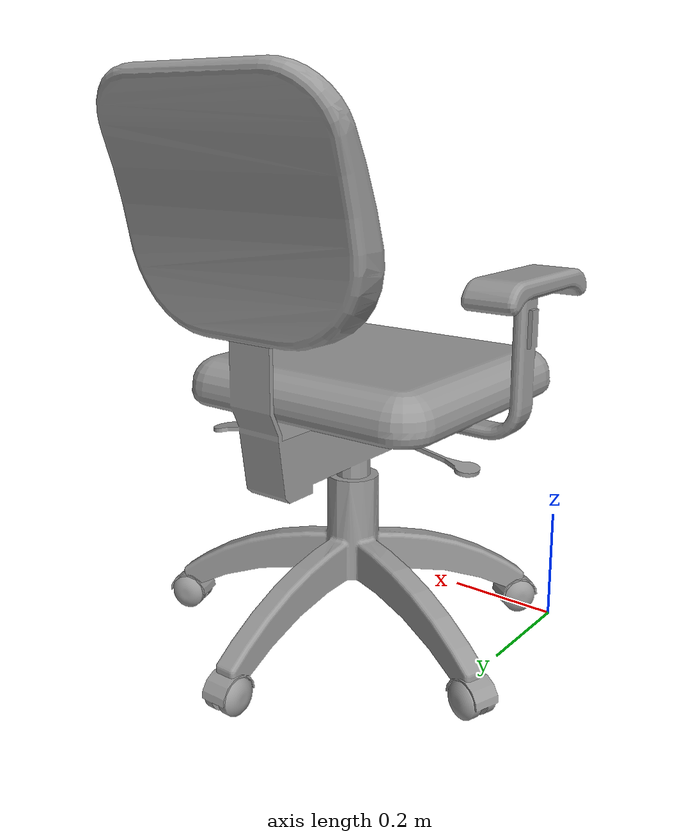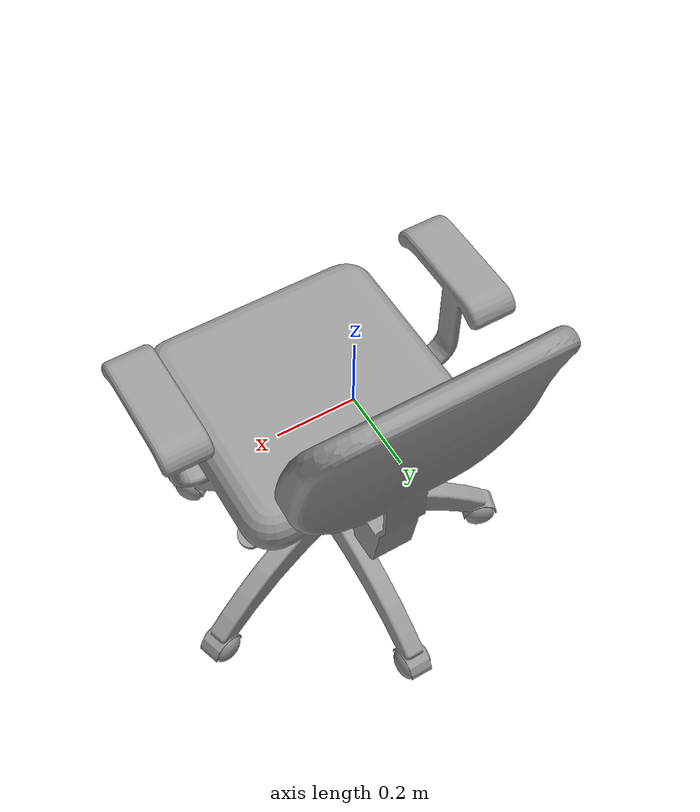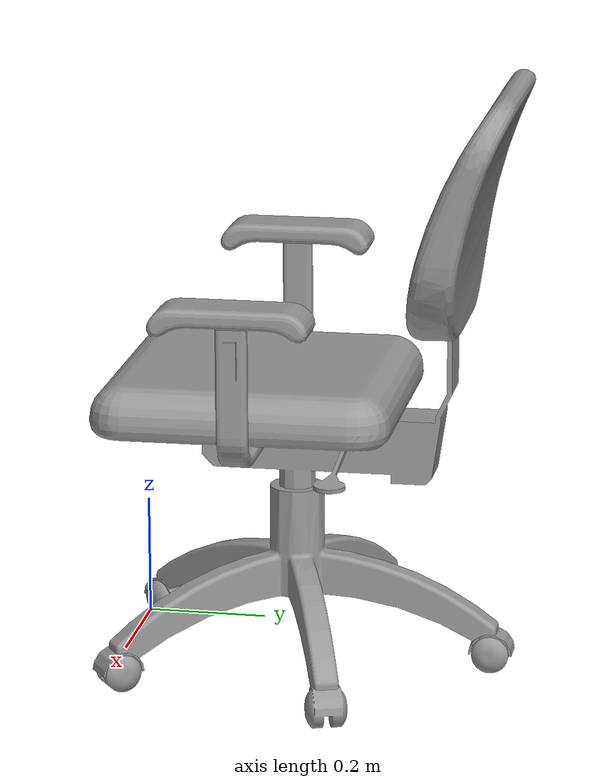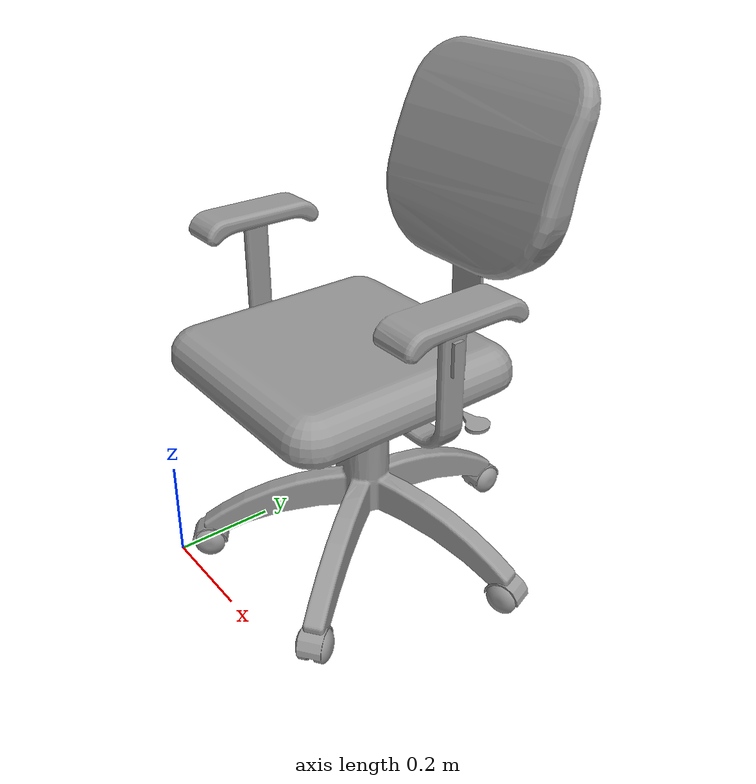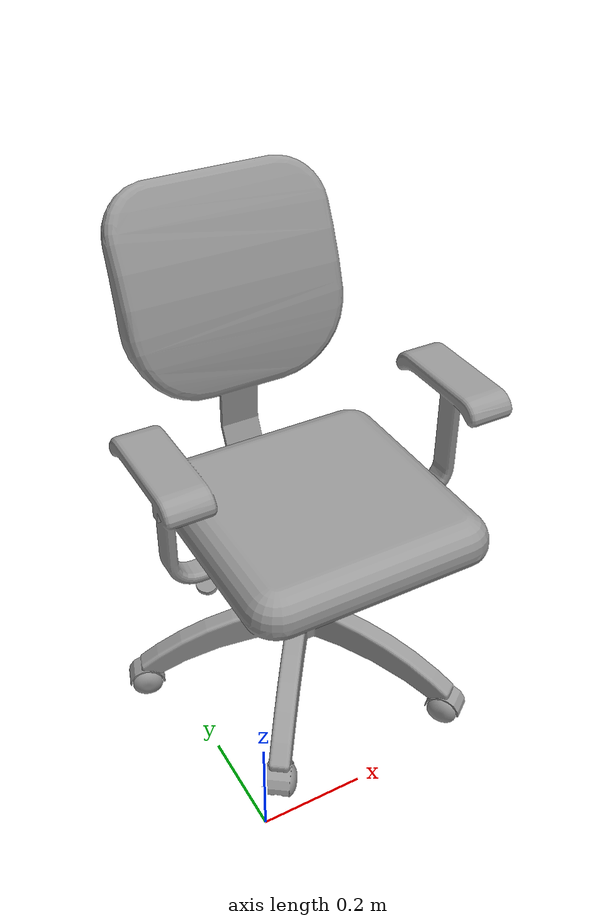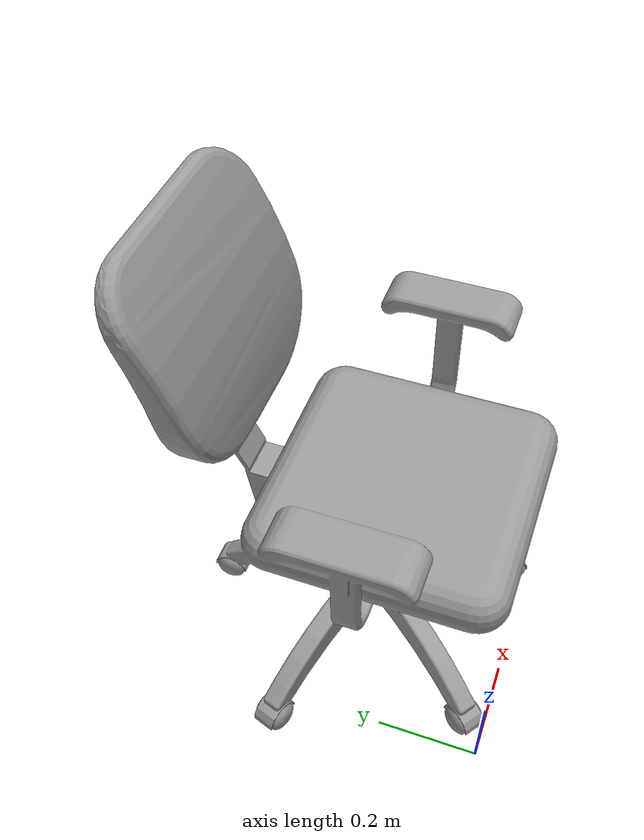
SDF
<?xml version='1.0'?>
<sdf version='1.6'>
  <model name='rai_desktop_chair'>
    <link name='link_1'>
      <pose frame=''>0 0 0.44 1.57312 0 0</pose>
      <visual name='visual'>
        <pose frame=''>0 0 0 0 -0 0</pose>

        <geometry>
          <mesh>
            <uri>model://rai_desktop_chair/meshes/rai_desktop_chair.STL</uri>
          </mesh>
        </geometry>

        <material>
          <lighting>1</lighting>
          <script>
            <uri>file://media/materials/scripts/gazebo.material</uri>
            <name>Gazebo/Grey</name>
          </script>
          <ambient>0.1 0.1 0.1 0.1</ambient>
          <diffuse>0.3 0.3 0.3 0.5</diffuse>
          <specular>0.01 0.01 0.01 1</specular>
          <emissive>0 0 0 0.5</emissive>
          <shader type='vertex'>
            <normal_map>__default__</normal_map>
          </shader>
        </material>
        <cast_shadows>1</cast_shadows>
        <transparency>0</transparency>
      </visual>

      <collision name='collision'>
        <pose frame=''>0.24 0.04 -0.33 0 -0 0</pose>
        <geometry>
          <box>
            <size>0.68 0.98 0.65</size>
          </box>
        </geometry>
      </collision>
    </link>
    <static>1</static>
    <allow_auto_disable>1</allow_auto_disable>
  </model>
</sdf>
